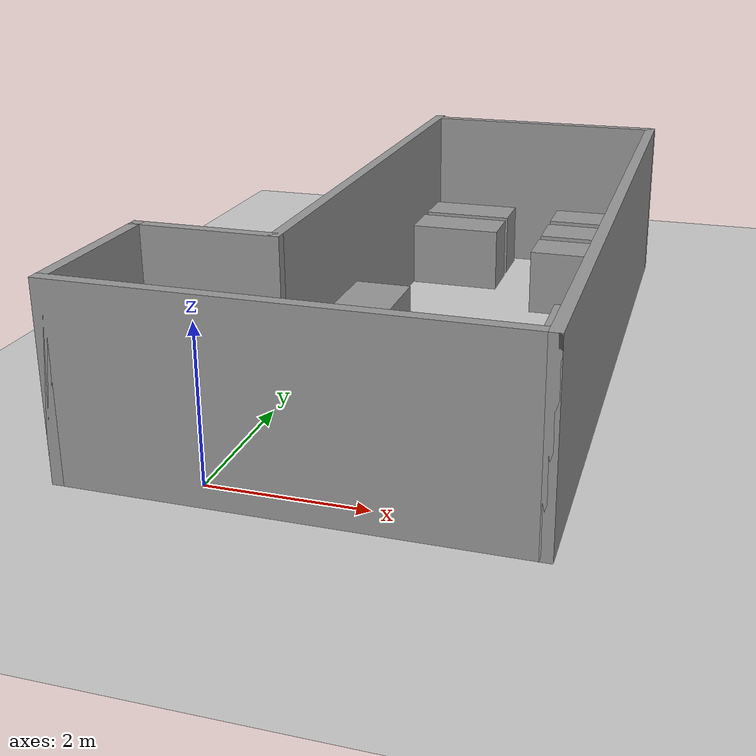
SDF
<sdf version="1.7">
 <world name="default">
  <light name="sun" type="directional">
   <pose>0 0 10 0 -0 0</pose>
   <diffuse>0.8 0.8 0.8 1</diffuse>
   <specular>0.2 0.2 0.2 1</specular>
   <attenuation>
    <range>1000</range>
    <constant>0.9</constant>
    <linear>0.01</linear>
    <quadratic>0.001</quadratic>
   </attenuation>
   <direction>-0.5 0.1 -0.9</direction>
   <spot><inner_angle>0</inner_angle><outer_angle>0</outer_angle><falloff>0</falloff></spot>
  </light>
  <model name="ground_plane">
   <static>1</static>
   <link name="link">
    <collision name="collision">
     <geometry><plane><normal>0 0 1</normal><size>100 100</size></plane></geometry>
     <surface><friction><ode><mu>100</mu><mu2>50</mu2></ode></friction></surface>
    </collision>
    <visual name="visual">
     <cast_shadows>0</cast_shadows>
     <geometry><plane><normal>0 0 1</normal><size>100 100</size></plane></geometry>
     <material>
      <script><uri>file://media/materials/scripts/gazebo.material</uri><name>Gazebo/Grey</name></script>
     </material>
    </visual>
   </link>
  </model>
  <gravity>0 0 -9.8</gravity>
  <magnetic_field>6e-06 2.3e-05 -4.2e-05</magnetic_field>
  <atmosphere type="adiabatic"/>
  <physics type="ode">
   <max_step_size>0.001</max_step_size>
   <real_time_factor>1</real_time_factor>
   <real_time_update_rate>1000</real_time_update_rate>
  </physics>
  <scene><ambient>0.4 0.4 0.4 1</ambient><background>0.7 0.7 0.7 1</background><shadows>1</shadows></scene>
  <spherical_coordinates>
   <surface_model>EARTH_WGS84</surface_model>
   <latitude_deg>0</latitude_deg>
   <longitude_deg>0</longitude_deg>
   <elevation>0</elevation>
   <heading_deg>0</heading_deg>
  </spherical_coordinates>
  <model name="unit_box_clone">
   <pose>3.21511 8.6625 0.499995 0 7e-06 -1.3e-05</pose>
   <link name="link">
    <inertial>
     <mass>1</mass>
     <inertia>
      <ixx>0.166667</ixx>
      <ixy>0</ixy>
      <ixz>0</ixz>
      <iyy>0.166667</iyy>
      <iyz>0</iyz>
      <izz>0.166667</izz>
     </inertia>
    </inertial>
    <collision name="collision"><geometry><box><size>1.42752 0.708021 1</size></box></geometry></collision>
    <visual name="visual">
     <geometry><box><size>1.42752 0.708021 1</size></box></geometry>
     <material>
      <script><name>Gazebo/Grey</name><uri>file://media/materials/scripts/gazebo.material</uri></script>
     </material>
    </visual>
   </link>
  </model>
  <model name="unit_box_clone_0">
   <pose>1.04267 7.75228 0.5 0 0 -3.2e-05</pose>
   <link name="link">
    <inertial>
     <mass>1</mass>
     <inertia>
      <ixx>0.166667</ixx>
      <ixy>0</ixy>
      <ixz>0</ixz>
      <iyy>0.166667</iyy>
      <iyz>0</iyz>
      <izz>0.166667</izz>
     </inertia>
    </inertial>
    <collision name="collision"><geometry><box><size>1.42752 0.708021 1</size></box></geometry></collision>
    <visual name="visual">
     <geometry><box><size>1.42752 0.708021 1</size></box></geometry>
     <material>
      <script><name>Gazebo/Grey</name><uri>file://media/materials/scripts/gazebo.material</uri></script>
     </material>
    </visual>
   </link>
  </model>
  <model name="unit_box_clone_0_clone">
   <pose>3.21512 7.75919 0.5 0 0 -9e-06</pose>
   <link name="link">
    <inertial>
     <mass>1</mass>
     <inertia>
      <ixx>0.166667</ixx>
      <ixy>0</ixy>
      <ixz>0</ixz>
      <iyy>0.166667</iyy>
      <iyz>0</iyz>
      <izz>0.166667</izz>
     </inertia>
    </inertial>
    <collision name="collision"><geometry><box><size>1.42752 0.708021 1</size></box></geometry></collision>
    <visual name="visual">
     <geometry><box><size>1.42752 0.708021 1</size></box></geometry>
     <material>
      <script><name>Gazebo/Grey</name><uri>file://media/materials/scripts/gazebo.material</uri></script>
     </material>
    </visual>
   </link>
  </model>
  <model name="unit_box_clone_0_clone_0">
   <pose>1.04267 8.63246 0.5 0 -0 2e-06</pose>
   <link name="link">
    <inertial>
     <mass>1</mass>
     <inertia>
      <ixx>0.166667</ixx>
      <ixy>0</ixy>
      <ixz>0</ixz>
      <iyy>0.166667</iyy>
      <iyz>0</iyz>
      <izz>0.166667</izz>
     </inertia>
    </inertial>
    <collision name="collision"><geometry><box><size>1.42752 0.708021 1</size></box></geometry></collision>
    <visual name="visual">
     <geometry><box><size>1.42752 0.708021 1</size></box></geometry>
     <material>
      <script><name>Gazebo/Grey</name><uri>file://media/materials/scripts/gazebo.material</uri></script>
     </material>
    </visual>
   </link>
  </model>
  <model name="unit_box_clone_0_clone_clone">
   <pose>3.21513 6.85685 0.5 0 -0 4e-06</pose>
   <link name="link">
    <inertial>
     <mass>1</mass>
     <inertia>
      <ixx>0.166667</ixx>
      <ixy>0</ixy>
      <ixz>0</ixz>
      <iyy>0.166667</iyy>
      <iyz>0</iyz>
      <izz>0.166667</izz>
     </inertia>
    </inertial>
    <collision name="collision"><geometry><box><size>1.42752 0.708021 1</size></box></geometry></collision>
    <visual name="visual">
     <geometry><box><size>1.42752 0.708021 1</size></box></geometry>
     <material>
      <script><name>Gazebo/Grey</name><uri>file://media/materials/scripts/gazebo.material</uri></script>
     </material>
    </visual>
   </link>
  </model>
  <model name="unit_box_clone_0_clone_clone_clone">
   <pose>0.733663 3.07103 0.499891 0 -7.9e-05 1.57076</pose>
   <link name="link">
    <inertial>
     <mass>1</mass>
     <inertia>
      <ixx>0.166667</ixx>
      <ixy>0</ixy>
      <ixz>0</ixz>
      <iyy>0.166667</iyy>
      <iyz>0</iyz>
      <izz>0.166667</izz>
     </inertia>
    </inertial>
    <collision name="collision"><geometry><box><size>2.74802 0.809348 1</size></box></geometry></collision>
    <visual name="visual">
     <geometry><box><size>2.74802 0.809348 1</size></box></geometry>
     <material>
      <script><name>Gazebo/Grey</name><uri>file://media/materials/scripts/gazebo.material</uri></script>
     </material>
    </visual>
   </link>
  </model>
  <model name="unit_box_clone_0_clone_clone_clone_clone">
   <pose>3.58931 2.95411 0.499907 -7e-05 -0 -9e-06</pose>
   <link name="link">
    <inertial>
     <mass>1</mass>
     <inertia>
      <ixx>0.166667</ixx>
      <ixy>0</ixy>
      <ixz>0</ixz>
      <iyy>0.166667</iyy>
      <iyz>0</iyz>
      <izz>0.166667</izz>
     </inertia>
    </inertial>
    <collision name="collision"><geometry><box><size>0.67915 2.67198 1</size></box></geometry></collision>
    <visual name="visual">
     <geometry><box><size>0.67915 2.67198 1</size></box></geometry>
     <material>
      <script><name>Gazebo/Grey</name><uri>file://media/materials/scripts/gazebo.material</uri></script>
     </material>
    </visual>
   </link>
  </model>
  <model name="unit_cylinder">
   <pose>3.32427 0.193702 0.499994 -3e-06 -2e-06 0</pose>
   <link name="link">
    <inertial>
     <mass>1</mass>
     <inertia><ixx>0.145833</ixx><ixy>0</ixy><ixz>0</ixz><iyy>0.145833</iyy><iyz>0</iyz><izz>0.125</izz></inertia>
    </inertial>
    <collision name="collision">
     <geometry><cylinder><radius>0.5</radius><length>1</length></cylinder></geometry>
    </collision>
    <visual name="visual">
     <geometry><cylinder><radius>0.5</radius><length>1</length></cylinder></geometry>
     <material>
      <script><name>Gazebo/Grey</name><uri>file://media/materials/scripts/gazebo.material</uri></script>
     </material>
    </visual>
   </link>
  </model>
  <model name="bus_space2">
   <pose>0.065947 4.46869 0 0 -0 0</pose>
   <link name="Wall_0">
    <collision name="Wall_0_Collision">
     <geometry><box><size>7.75 0.15 2.5</size></box></geometry>
     <pose>0 0 1.25 0 -0 0</pose>
    </collision>
    <visual name="Wall_0_Visual">
     <pose>0 0 1.25 0 -0 0</pose>
     <geometry><box><size>7.75 0.15 2.5</size></box></geometry>
     <material>
      <script><uri>file://media/materials/scripts/gazebo.material</uri><name>Gazebo/Grey</name></script>
      <ambient>1 1 1 1</ambient>
     </material>
     <meta><layer>0</layer></meta>
    </visual>
    <pose>0.187948 1.05 0 0 -0 -1.5708</pose>
   </link>
   <link name="Wall_1">
    <collision name="Wall_1_Collision">
     <geometry><box><size>2 0.15 2.5</size></box></geometry>
     <pose>0 0 1.25 0 -0 0</pose>
    </collision>
    <visual name="Wall_1_Visual">
     <pose>0 0 1.25 0 -0 0</pose>
     <geometry><box><size>2 0.15 2.5</size></box></geometry>
     <material>
      <script><uri>file://media/materials/scripts/gazebo.material</uri><name>Gazebo/Grey</name></script>
      <ambient>1 1 1 1</ambient>
     </material>
     <meta><layer>0</layer></meta>
    </visual>
    <pose>-0.737052 -2.75 0 0 -0 3.14159</pose>
   </link>
   <link name="Wall_2">
    <collision name="Wall_2_Collision">
     <geometry><box><size>2.25 0.15 2.5</size></box></geometry>
     <pose>0 0 1.25 0 -0 0</pose>
    </collision>
    <visual name="Wall_2_Visual">
     <pose>0 0 1.25 0 -0 0</pose>
     <geometry><box><size>2.25 0.15 2.5</size></box></geometry>
     <material>
      <script><uri>file://media/materials/scripts/gazebo.material</uri><name>Gazebo/Grey</name></script>
      <ambient>1 1 1 1</ambient>
     </material>
     <meta><layer>0</layer></meta>
    </visual>
    <pose>-1.66205 -3.8 0 0 -0 -1.5708</pose>
   </link>
   <link name="Wall_3">
    <collision name="Wall_3_Collision">
     <geometry><box><size>5.75 0.15 2.5</size></box></geometry>
     <pose>0 0 1.25 0 -0 0</pose>
    </collision>
    <visual name="Wall_3_Visual">
     <pose>0 0 1.25 0 -0 0</pose>
     <geometry><box><size>5.75 0.15 2.5</size></box></geometry>
     <material>
      <script><uri>file://media/materials/scripts/gazebo.material</uri><name>Gazebo/Grey</name></script>
      <ambient>1 1 1 1</ambient>
     </material>
     <meta><layer>0</layer></meta>
    </visual>
    <pose>1.13795 -4.85 0 0 -0 0</pose>
   </link>
   <link name="Wall_4">
    <collision name="Wall_4_Collision">
     <geometry><box><size>9.75 0.15 2.5</size></box></geometry>
     <pose>0 0 1.25 0 -0 0</pose>
    </collision>
    <visual name="Wall_4_Visual">
     <pose>0 0 1.25 0 -0 0</pose>
     <geometry><box><size>9.75 0.15 2.5</size></box></geometry>
     <material>
      <script><uri>file://media/materials/scripts/gazebo.material</uri><name>Gazebo/Grey</name></script>
      <ambient>1 1 1 1</ambient>
     </material>
     <meta><layer>0</layer></meta>
    </visual>
    <pose>3.93795 -0.05 0 0 -0 1.5708</pose>
   </link>
   <link name="Wall_5">
    <collision name="Wall_5_Collision">
     <geometry><box><size>3.75 0.15 2.5</size></box></geometry>
     <pose>0 0 1.25 0 -0 0</pose>
    </collision>
    <visual name="Wall_5_Visual">
     <pose>0 0 1.25 0 -0 0</pose>
     <geometry><box><size>3.75 0.15 2.5</size></box></geometry>
     <material>
      <script><uri>file://media/materials/scripts/gazebo.material</uri><name>Gazebo/Grey</name></script>
      <ambient>1 1 1 1</ambient>
     </material>
     <meta><layer>0</layer></meta>
    </visual>
    <pose>2.13795 4.75 0 0 -0 3.14159</pose>
   </link>
   <static>1</static>
  </model>
 </world>
</sdf>
